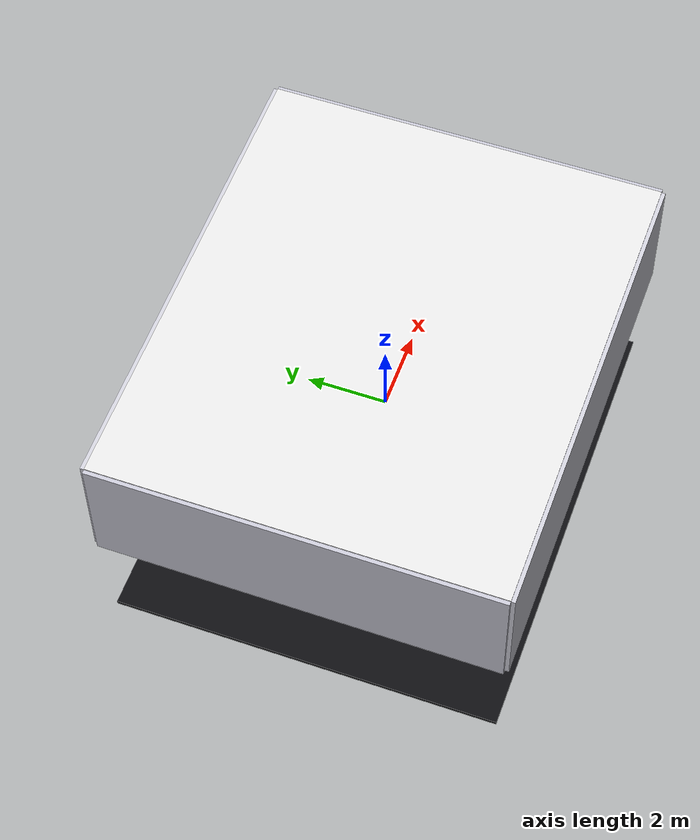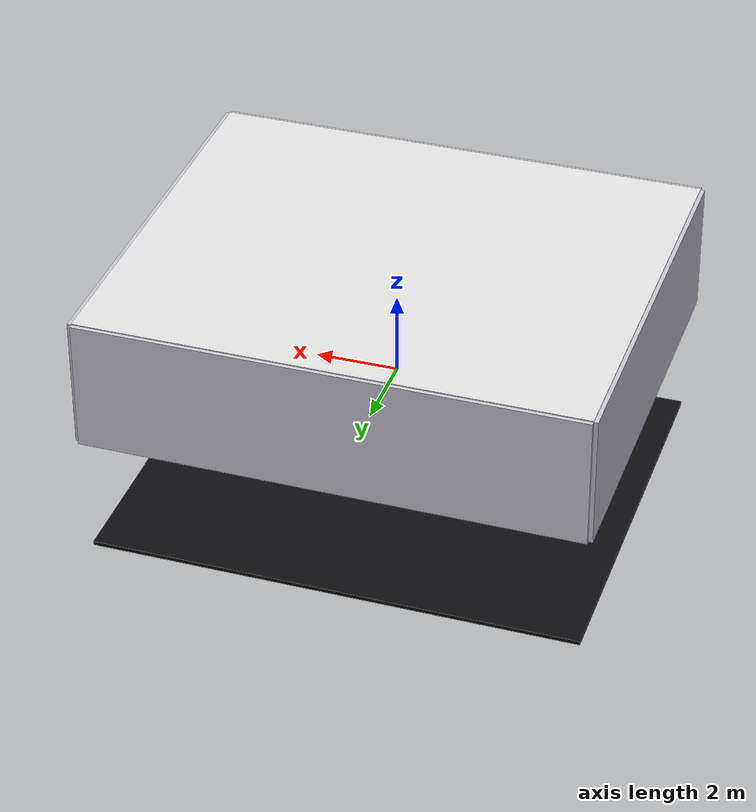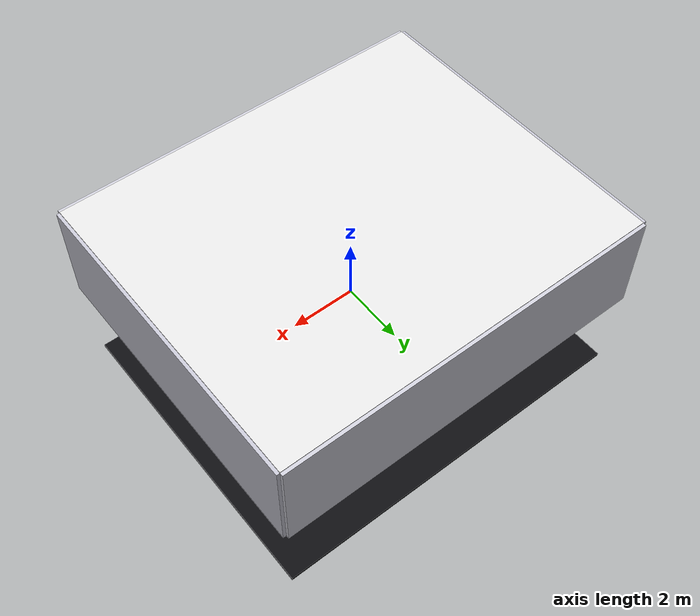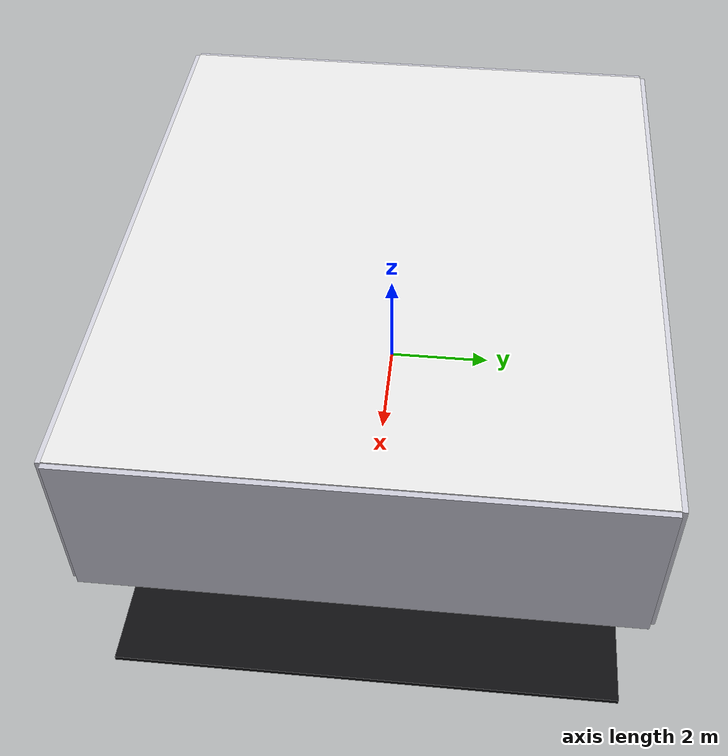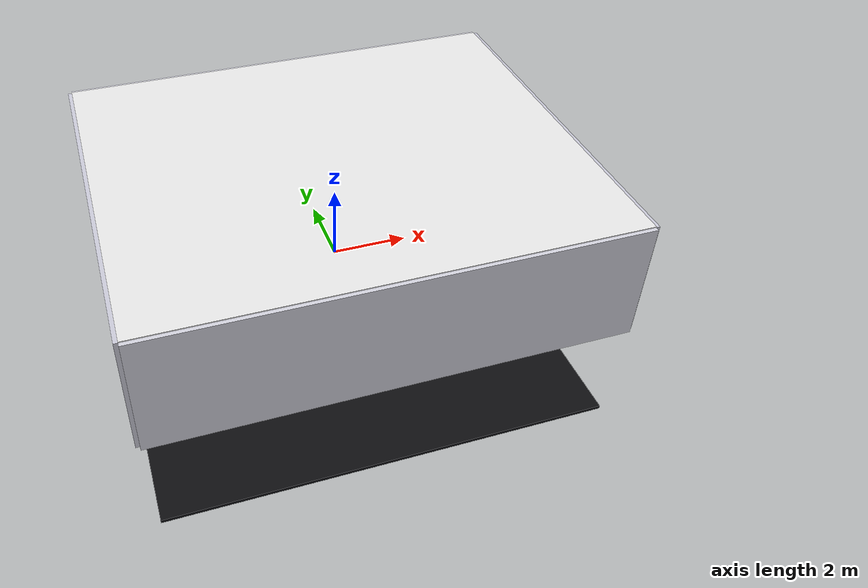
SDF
<?xml version="1.0" ?>
<sdf version="1.9">
  <world name="indoor_robotics_lab">
    <physics name="1ms" type="ignored">
      <max_step_size>0.001</max_step_size>
      <real_time_factor>1.0</real_time_factor>
      <real_time_update_rate>1000</real_time_update_rate>
    </physics>

    <plugin filename="gz-sim-physics-system"
            name="gz::sim::systems::Physics"/>
    <plugin filename="gz-sim-user-commands-system"
            name="gz::sim::systems::UserCommands"/>
    <plugin filename="gz-sim-scene-broadcaster-system"
            name="gz::sim::systems::SceneBroadcaster"/>
    <plugin filename="gz-sim-sensors-system"
            name="gz::sim::systems::Sensors">
      <render_engine>ogre2</render_engine>
    </plugin>

    <scene>
      <ambient>0.3 0.3 0.3 1</ambient>
      <background>0.15 0.15 0.18 1</background>
      <shadows>true</shadows>
      <grid>false</grid>
    </scene>

    <gravity>0 0 -9.81</gravity>
    <magnetic_field>6e-06 2.3e-05 -4.2e-05</magnetic_field>
    <atmosphere type="adiabatic"/>

    <light name="sun" type="directional">
      <pose>0 0 10 0 0 0</pose>
      <cast_shadows>true</cast_shadows>
      <diffuse>0.8 0.8 0.8 1</diffuse>
      <specular>0.2 0.2 0.2 1</specular>
      <direction>-0.5 0.1 -0.9</direction>
      <attenuation>
        <range>1000</range>
        <constant>0.9</constant>
        <linear>0.01</linear>
        <quadratic>0.001</quadratic>
      </attenuation>
    </light>

    <light name="lab_light_1" type="point">
      <pose>-3.0 2.5 2.8 0 0 0</pose>
      <diffuse>1.0 0.98 0.92 1</diffuse>
      <specular>0.3 0.3 0.3 1</specular>
      <attenuation>
        <range>8</range><constant>0.4</constant>
        <linear>0.05</linear><quadratic>0.01</quadratic>
      </attenuation>
      <cast_shadows>false</cast_shadows>
    </light>
    <light name="lab_light_2" type="point">
      <pose>3.0 2.5 2.8 0 0 0</pose>
      <diffuse>1.0 0.98 0.92 1</diffuse>
      <specular>0.3 0.3 0.3 1</specular>
      <attenuation>
        <range>8</range><constant>0.4</constant>
        <linear>0.05</linear><quadratic>0.01</quadratic>
      </attenuation>
      <cast_shadows>false</cast_shadows>
    </light>
    <light name="lab_light_3" type="point">
      <pose>-3.0 -2.5 2.8 0 0 0</pose>
      <diffuse>1.0 0.98 0.92 1</diffuse>
      <specular>0.3 0.3 0.3 1</specular>
      <attenuation>
        <range>8</range><constant>0.4</constant>
        <linear>0.05</linear><quadratic>0.01</quadratic>
      </attenuation>
      <cast_shadows>false</cast_shadows>
    </light>
    <light name="lab_light_4" type="point">
      <pose>3.0 -2.5 2.8 0 0 0</pose>
      <diffuse>1.0 0.98 0.92 1</diffuse>
      <specular>0.3 0.3 0.3 1</specular>
      <attenuation>
        <range>8</range><constant>0.4</constant>
        <linear>0.05</linear><quadratic>0.01</quadratic>
      </attenuation>
      <cast_shadows>false</cast_shadows>
    </light>

    <light name="platform_spotlight" type="spot">
      <pose>0 0 2.9 0 0 0</pose>
      <diffuse>1.0 1.0 1.0 1</diffuse>
      <specular>0.5 0.5 0.5 1</specular>
      <direction>0 0 -1</direction>
      <spot>
        <inner_angle>0.6</inner_angle>
        <outer_angle>1.0</outer_angle>
        <falloff>1.0</falloff>
      </spot>
      <attenuation>
        <range>5</range><constant>0.3</constant>
        <linear>0.05</linear><quadratic>0.01</quadratic>
      </attenuation>
      <cast_shadows>true</cast_shadows>
    </light>

    <model name="lab_floor">
      <static>true</static>
      <pose>0 0 -0.025 0 0 0</pose>
      <link name="floor_link">
        <collision name="floor_col">
          <geometry><box><size>12 10 0.05</size></box></geometry>
          <surface>
            <friction><ode><mu>0.8</mu><mu2>0.8</mu2></ode></friction>
          </surface>
        </collision>
        <visual name="floor_vis">
          <geometry><box><size>12 10 0.05</size></box></geometry>
          <material>
            <ambient>0.55 0.55 0.55 1</ambient>
            <diffuse>0.6 0.6 0.62 1</diffuse>
            <specular>0.1 0.1 0.1 1</specular>
          </material>
        </visual>
      </link>
    </model>

    <model name="grid_x1"><static>true</static><pose>0 -4 0.001 0 0 0</pose>
      <link name="l"><visual name="v"><geometry><box><size>12 0.01 0.002</size></box></geometry>
        <material><ambient>0.4 0.4 0.45 1</ambient><diffuse>0.4 0.4 0.45 1</diffuse></material></visual></link></model>
    <model name="grid_x2"><static>true</static><pose>0 -3 0.001 0 0 0</pose>
      <link name="l"><visual name="v"><geometry><box><size>12 0.01 0.002</size></box></geometry>
        <material><ambient>0.4 0.4 0.45 1</ambient><diffuse>0.4 0.4 0.45 1</diffuse></material></visual></link></model>
    <model name="grid_x3"><static>true</static><pose>0 -2 0.001 0 0 0</pose>
      <link name="l"><visual name="v"><geometry><box><size>12 0.01 0.002</size></box></geometry>
        <material><ambient>0.4 0.4 0.45 1</ambient><diffuse>0.4 0.4 0.45 1</diffuse></material></visual></link></model>
    <model name="grid_x4"><static>true</static><pose>0 -1 0.001 0 0 0</pose>
      <link name="l"><visual name="v"><geometry><box><size>12 0.01 0.002</size></box></geometry>
        <material><ambient>0.4 0.4 0.45 1</ambient><diffuse>0.4 0.4 0.45 1</diffuse></material></visual></link></model>
    <model name="grid_x5"><static>true</static><pose>0 0 0.001 0 0 0</pose>
      <link name="l"><visual name="v"><geometry><box><size>12 0.01 0.002</size></box></geometry>
        <material><ambient>0.35 0.35 0.4 1</ambient><diffuse>0.35 0.35 0.4 1</diffuse></material></visual></link></model>
    <model name="grid_x6"><static>true</static><pose>0 1 0.001 0 0 0</pose>
      <link name="l"><visual name="v"><geometry><box><size>12 0.01 0.002</size></box></geometry>
        <material><ambient>0.4 0.4 0.45 1</ambient><diffuse>0.4 0.4 0.45 1</diffuse></material></visual></link></model>
    <model name="grid_x7"><static>true</static><pose>0 2 0.001 0 0 0</pose>
      <link name="l"><visual name="v"><geometry><box><size>12 0.01 0.002</size></box></geometry>
        <material><ambient>0.4 0.4 0.45 1</ambient><diffuse>0.4 0.4 0.45 1</diffuse></material></visual></link></model>
    <model name="grid_x8"><static>true</static><pose>0 3 0.001 0 0 0</pose>
      <link name="l"><visual name="v"><geometry><box><size>12 0.01 0.002</size></box></geometry>
        <material><ambient>0.4 0.4 0.45 1</ambient><diffuse>0.4 0.4 0.45 1</diffuse></material></visual></link></model>
    <model name="grid_x9"><static>true</static><pose>0 4 0.001 0 0 0</pose>
      <link name="l"><visual name="v"><geometry><box><size>12 0.01 0.002</size></box></geometry>
        <material><ambient>0.4 0.4 0.45 1</ambient><diffuse>0.4 0.4 0.45 1</diffuse></material></visual></link></model>

    <model name="lab_ceiling">
      <static>true</static>
      <pose>0 0 3.2 0 0 0</pose>
      <link name="ceiling_link">
        <collision name="c"><geometry><box><size>12 10 0.05</size></box></geometry></collision>
        <visual name="v">
          <geometry><box><size>12 10 0.05</size></box></geometry>
          <material>
            <ambient>0.85 0.85 0.85 1</ambient>
            <diffuse>0.88 0.88 0.88 1</diffuse>
          </material>
        </visual>
      </link>
    </model>

    <model name="wall_north">
      <static>true</static><pose>0 5.0 1.6 0 0 0</pose>
      <link name="l">
        <collision name="c"><geometry><box><size>12 0.2 3.2</size></box></geometry></collision>
        <visual name="v"><geometry><box><size>12 0.2 3.2</size></box></geometry>
          <material><ambient>0.78 0.78 0.82 1</ambient><diffuse>0.8 0.8 0.84 1</diffuse></material></visual>
      </link>
    </model>
    <model name="wall_south">
      <static>true</static><pose>0 -5.0 1.6 0 0 0</pose>
      <link name="l">
        <collision name="c"><geometry><box><size>12 0.2 3.2</size></box></geometry></collision>
        <visual name="v"><geometry><box><size>12 0.2 3.2</size></box></geometry>
          <material><ambient>0.78 0.78 0.82 1</ambient><diffuse>0.8 0.8 0.84 1</diffuse></material></visual>
      </link>
    </model>
    <model name="wall_east">
      <static>true</static><pose>6.0 0 1.6 0 0 0</pose>
      <link name="l">
        <collision name="c"><geometry><box><size>0.2 10 3.2</size></box></geometry></collision>
        <visual name="v"><geometry><box><size>0.2 10 3.2</size></box></geometry>
          <material><ambient>0.75 0.75 0.80 1</ambient><diffuse>0.77 0.77 0.82 1</diffuse></material></visual>
      </link>
    </model>
    <model name="wall_west">
      <static>true</static><pose>-6.0 0 1.6 0 0 0</pose>
      <link name="l">
        <collision name="c"><geometry><box><size>0.2 10 3.2</size></box></geometry></collision>
        <visual name="v"><geometry><box><size>0.2 10 3.2</size></box></geometry>
          <material><ambient>0.75 0.75 0.80 1</ambient><diffuse>0.77 0.77 0.82 1</diffuse></material></visual>
      </link>
    </model>

   <model name="baseboard_north"><static>true</static><pose>0 4.85 0.075 0 0 0</pose>
      <link name="l"><visual name="v"><geometry><box><size>11.6 0.05 0.15</size></box></geometry>
        <material><ambient>0.25 0.25 0.28 1</ambient><diffuse>0.25 0.25 0.28 1</diffuse></material></visual></link></model>
    <model name="baseboard_south"><static>true</static><pose>0 -4.85 0.075 0 0 0</pose>
      <link name="l"><visual name="v"><geometry><box><size>11.6 0.05 0.15</size></box></geometry>
        <material><ambient>0.25 0.25 0.28 1</ambient><diffuse>0.25 0.25 0.28 1</diffuse></material></visual></link></model>
    <model name="baseboard_east"><static>true</static><pose>5.85 0 0.075 0 0 0</pose>
      <link name="l"><visual name="v"><geometry><box><size>0.05 9.6 0.15</size></box></geometry>
        <material><ambient>0.25 0.25 0.28 1</ambient><diffuse>0.25 0.25 0.28 1</diffuse></material></visual></link></model>
    <model name="baseboard_west"><static>true</static><pose>-5.85 0 0.075 0 0 0</pose>
      <link name="l"><visual name="v"><geometry><box><size>0.05 9.6 0.15</size></box></geometry>
        <material><ambient>0.25 0.25 0.28 1</ambient><diffuse>0.25 0.25 0.28 1</diffuse></material></visual></link></model>

    <model name="edge_test_platform">
      <static>true</static>
      <pose>0 0 0.05 0 0 0</pose>

      <link name="platform_link">
        <collision name="platform_col">
          <geometry>
            <box><size>4.0 4.0 0.10</size></box>
          </geometry>
          <surface>
            <friction><ode><mu>0.9</mu><mu2>0.9</mu2></ode></friction>
            <bounce><restitution_coefficient>0.0</restitution_coefficient></bounce>
          </surface>
        </collision>

        <visual name="platform_top_vis">
          <geometry>
            <box><size>4.0 4.0 0.10</size></box>
          </geometry>
          <material>
            <ambient>0.96 0.96 0.96 1</ambient>
            <diffuse>0.98 0.98 0.98 1</diffuse>
            <specular>0.4 0.4 0.4 1</specular>
          </material>
        </visual>

        <visual name="stripe_north">
          <pose>0  1.92 0.052 0 0 0</pose>
          <geometry><box><size>4.0 0.06 0.001</size></box></geometry>
          <material><ambient>1 0.8 0 1</ambient><diffuse>1 0.85 0 1</diffuse></material>
        </visual>
        <visual name="stripe_south">
          <pose>0 -1.92 0.052 0 0 0</pose>
          <geometry><box><size>4.0 0.06 0.001</size></box></geometry>
          <material><ambient>1 0.8 0 1</ambient><diffuse>1 0.85 0 1</diffuse></material>
        </visual>
        <visual name="stripe_east">
          <pose> 1.92 0 0.052 0 0 0</pose>
          <geometry><box><size>0.06 4.0 0.001</size></box></geometry>
          <material><ambient>1 0.8 0 1</ambient><diffuse>1 0.85 0 1</diffuse></material>
        </visual>
        <visual name="stripe_west">
          <pose>-1.92 0 0.052 0 0 0</pose>
          <geometry><box><size>0.06 4.0 0.001</size></box></geometry>
          <material><ambient>1 0.8 0 1</ambient><diffuse>1 0.85 0 1</diffuse></material>
        </visual>

        <visual name="center_cross_h">
          <pose>0 0 0.052 0 0 0</pose>
          <geometry><box><size>0.3 0.02 0.001</size></box></geometry>
          <material><ambient>0.2 0.4 1 1</ambient><diffuse>0.2 0.4 1 1</diffuse></material>
        </visual>
        <visual name="center_cross_v">
          <pose>0 0 0.052 0 0 0</pose>
          <geometry><box><size>0.02 0.3 0.001</size></box></geometry>
          <material><ambient>0.2 0.4 1 1</ambient><diffuse>0.2 0.4 1 1</diffuse></material>
        </visual>
      </link>
    </model>

    <model name="pit_floor">
      <static>true</static>
      <pose>0 0 -3.0 0 0 0</pose>
      <link name="link">
        <collision name="c"><geometry><box><size>11.8 9.8 0.1</size></box></geometry></collision>
        <visual name="v">
          <geometry><box><size>11.8 9.8 0.1</size></box></geometry>
          <material>
            <ambient>0.05 0.05 0.06 1</ambient>
            <diffuse>0.05 0.05 0.06 1</diffuse>
          </material>
        </visual>
      </link>
    </model>

    <model name="workbench">
      <static>true</static><pose>-4.5 3.0 0.45 0 0 0</pose>
      <link name="l">
        <collision name="c"><geometry><box><size>2.0 0.7 0.9</size></box></geometry></collision>
        <visual name="v"><geometry><box><size>2.0 0.7 0.9</size></box></geometry>
          <material><ambient>0.45 0.32 0.20 1</ambient><diffuse>0.50 0.36 0.22 1</diffuse>
            <specular>0.15 0.12 0.08 1</specular></material></visual>
      </link>
    </model>
    <model name="workbench_top">
      <static>true</static><pose>-4.5 3.0 0.905 0 0 0</pose>
      <link name="l">
        <collision name="c"><geometry><box><size>2.0 0.7 0.01</size></box></geometry></collision>
        <visual name="v"><geometry><box><size>2.0 0.7 0.01</size></box></geometry>
          <material><ambient>0.6 0.45 0.3 1</ambient><diffuse>0.62 0.47 0.3 1</diffuse>
            <specular>0.4 0.35 0.25 1</specular></material></visual>
      </link>
    </model>
    <model name="monitor_stand">
      <static>true</static><pose>-4.5 3.2 1.22 0 0 0</pose>
      <link name="l">
        <collision name="c"><geometry><box><size>0.04 0.04 0.25</size></box></geometry></collision>
        <visual name="v"><geometry><box><size>0.04 0.04 0.25</size></box></geometry>
          <material><ambient>0.15 0.15 0.15 1</ambient><diffuse>0.15 0.15 0.15 1</diffuse></material></visual>
      </link>
    </model>
    <model name="monitor_screen">
      <static>true</static><pose>-4.5 3.22 1.52 0 -0.15 0</pose>
      <link name="l">
        <collision name="c"><geometry><box><size>0.55 0.02 0.34</size></box></geometry></collision>
        <visual name="v"><geometry><box><size>0.55 0.02 0.34</size></box></geometry>
          <material><ambient>0.08 0.08 0.1 1</ambient><diffuse>0.08 0.08 0.1 1</diffuse></material></visual>
      </link>
    </model>
    <model name="toolbox">
      <static>true</static><pose>-5.2 3.15 0.97 0 0 0</pose>
      <link name="l">
        <collision name="c"><geometry><box><size>0.35 0.2 0.12</size></box></geometry></collision>
        <visual name="v"><geometry><box><size>0.35 0.2 0.12</size></box></geometry>
          <material><ambient>0.8 0.2 0.1 1</ambient><diffuse>0.85 0.22 0.1 1</diffuse></material></visual>
      </link>
    </model>
    <model name="lab_stool_seat">
      <static>true</static><pose>-4.5 2.0 0.65 0 0 0</pose>
      <link name="l">
        <collision name="c"><geometry><cylinder><radius>0.2</radius><length>0.05</length></cylinder></geometry></collision>
        <visual name="v"><geometry><cylinder><radius>0.2</radius><length>0.05</length></cylinder></geometry>
          <material><ambient>0.15 0.15 0.18 1</ambient><diffuse>0.15 0.15 0.18 1</diffuse></material></visual>
      </link>
    </model>
    <model name="lab_stool_pole">
      <static>true</static><pose>-4.5 2.0 0.325 0 0 0</pose>
      <link name="l">
        <collision name="c"><geometry><cylinder><radius>0.03</radius><length>0.65</length></cylinder></geometry></collision>
        <visual name="v"><geometry><cylinder><radius>0.03</radius><length>0.65</length></cylinder></geometry>
          <material><ambient>0.6 0.6 0.65 1</ambient><diffuse>0.6 0.6 0.65 1</diffuse></material></visual>
      </link>
    </model>

    <model name="shelf_back">
      <static>true</static><pose>5.4 -3.0 1.0 0 0 0</pose>
      <link name="l">
        <collision name="c"><geometry><box><size>0.05 2.0 2.0</size></box></geometry></collision>
        <visual name="v"><geometry><box><size>0.05 2.0 2.0</size></box></geometry>
          <material><ambient>0.55 0.45 0.35 1</ambient><diffuse>0.55 0.45 0.35 1</diffuse></material></visual>
      </link>
    </model>
    <model name="shelf_board_1">
      <static>true</static><pose>5.15 -3.0 0.55 0 0 0</pose>
      <link name="l">
        <collision name="c"><geometry><box><size>0.5 2.0 0.04</size></box></geometry></collision>
        <visual name="v"><geometry><box><size>0.5 2.0 0.04</size></box></geometry>
          <material><ambient>0.6 0.5 0.38 1</ambient><diffuse>0.6 0.5 0.38 1</diffuse></material></visual>
      </link>
    </model>
    <model name="shelf_board_2">
      <static>true</static><pose>5.15 -3.0 1.05 0 0 0</pose>
      <link name="l">
        <collision name="c"><geometry><box><size>0.5 2.0 0.04</size></box></geometry></collision>
        <visual name="v"><geometry><box><size>0.5 2.0 0.04</size></box></geometry>
          <material><ambient>0.6 0.5 0.38 1</ambient><diffuse>0.6 0.5 0.38 1</diffuse></material></visual>
      </link>
    </model>
    <model name="shelf_board_3">
      <static>true</static><pose>5.15 -3.0 1.55 0 0 0</pose>
      <link name="l">
        <collision name="c"><geometry><box><size>0.5 2.0 0.04</size></box></geometry></collision>
        <visual name="v"><geometry><box><size>0.5 2.0 0.04</size></box></geometry>
          <material><ambient>0.6 0.5 0.38 1</ambient><diffuse>0.6 0.5 0.38 1</diffuse></material></visual>
      </link>
    </model>
    <model name="box_shelf_1">
      <static>true</static><pose>5.15 -3.5 0.63 0 0 0</pose>
      <link name="l">
        <collision name="c"><geometry><box><size>0.2 0.3 0.14</size></box></geometry></collision>
        <visual name="v"><geometry><box><size>0.2 0.3 0.14</size></box></geometry>
          <material><ambient>0.2 0.5 0.7 1</ambient><diffuse>0.2 0.5 0.7 1</diffuse></material></visual>
      </link>
    </model>
    <model name="box_shelf_2">
      <static>true</static><pose>5.15 -2.8 0.63 0 0 0.3</pose>
      <link name="l">
        <collision name="c"><geometry><box><size>0.18 0.25 0.12</size></box></geometry></collision>
        <visual name="v"><geometry><box><size>0.18 0.25 0.12</size></box></geometry>
          <material><ambient>0.7 0.4 0.1 1</ambient><diffuse>0.7 0.4 0.1 1</diffuse></material></visual>
      </link>
    </model>
    <model name="box_shelf_3">
      <static>true</static><pose>5.15 -3.2 1.13 0 0 0</pose>
      <link name="l">
        <collision name="c"><geometry><box><size>0.22 0.35 0.14</size></box></geometry></collision>
        <visual name="v"><geometry><box><size>0.22 0.35 0.14</size></box></geometry>
          <material><ambient>0.15 0.6 0.3 1</ambient><diffuse>0.15 0.6 0.3 1</diffuse></material></visual>
      </link>
    </model>

    <model name="charging_station_base">
      <static>true</static><pose>4.5 -4.2 0.3 0 0 0</pose>
      <link name="l">
        <collision name="c"><geometry><box><size>0.6 0.4 0.6</size></box></geometry></collision>
        <visual name="v"><geometry><box><size>0.6 0.4 0.6</size></box></geometry>
          <material><ambient>0.12 0.12 0.14 1</ambient><diffuse>0.12 0.12 0.14 1</diffuse></material></visual>
      </link>
    </model>
    <model name="charging_station_panel">
      <static>true</static><pose>4.5 -4.0 0.7 0 -0.2 0</pose>
      <link name="l">
        <collision name="c"><geometry><box><size>0.45 0.04 0.2</size></box></geometry></collision>
        <visual name="v"><geometry><box><size>0.45 0.04 0.2</size></box></geometry>
          <material><ambient>0.05 0.4 0.8 1</ambient><diffuse>0.05 0.4 0.8 1</diffuse></material></visual>
      </link>
    </model>

    <model name="light_fixture_1"><static>true</static><pose>-3.0 2.5 3.18 0 0 0</pose>
      <link name="l"><visual name="v"><geometry><box><size>0.5 0.15 0.06</size></box></geometry>
        <material><ambient>1.0 1.0 0.9 1</ambient><diffuse>1.0 1.0 0.9 1</diffuse>
          <emissive>0.9 0.9 0.8 1</emissive></material></visual></link></model>
    <model name="light_fixture_2"><static>true</static><pose>3.0 2.5 3.18 0 0 0</pose>
      <link name="l"><visual name="v"><geometry><box><size>0.5 0.15 0.06</size></box></geometry>
        <material><ambient>1.0 1.0 0.9 1</ambient><diffuse>1.0 1.0 0.9 1</diffuse>
          <emissive>0.9 0.9 0.8 1</emissive></material></visual></link></model>
    <model name="light_fixture_3"><static>true</static><pose>-3.0 -2.5 3.18 0 0 0</pose>
      <link name="l"><visual name="v"><geometry><box><size>0.5 0.15 0.06</size></box></geometry>
        <material><ambient>1.0 1.0 0.9 1</ambient><diffuse>1.0 1.0 0.9 1</diffuse>
          <emissive>0.9 0.9 0.8 1</emissive></material></visual></link></model>
    <model name="light_fixture_4"><static>true</static><pose>3.0 -2.5 3.18 0 0 0</pose>
      <link name="l"><visual name="v"><geometry><box><size>0.5 0.15 0.06</size></box></geometry>
        <material><ambient>1.0 1.0 0.9 1</ambient><diffuse>1.0 1.0 0.9 1</diffuse>
          <emissive>0.9 0.9 0.8 1</emissive></material></visual></link></model>
    <model name="light_fixture_center"><static>true</static><pose>0 0 3.18 0 0 0</pose>
      <link name="l"><visual name="v"><geometry><cylinder><radius>0.12</radius><length>0.06</length></cylinder></geometry>
        <material><ambient>1.0 1.0 0.9 1</ambient><diffuse>1.0 1.0 0.9 1</diffuse>
          <emissive>1.0 1.0 0.85 1</emissive></material></visual></link></model>

    <model name="cable_conduit"><static>true</static><pose>-1.5 4.85 1.8 0 0 0</pose>
      <link name="l"><visual name="v"><geometry><box><size>5.0 0.06 0.06</size></box></geometry>
        <material><ambient>0.3 0.3 0.35 1</ambient><diffuse>0.3 0.3 0.35 1</diffuse></material></visual></link></model>

    <model name="fire_extinguisher"><static>true</static><pose>5.4 -4.5 0.3 0 0 0</pose>
      <link name="l">
        <collision name="c"><geometry><cylinder><radius>0.07</radius><length>0.55</length></cylinder></geometry></collision>
        <visual name="v"><geometry><cylinder><radius>0.07</radius><length>0.55</length></cylinder></geometry>
          <material><ambient>0.85 0.1 0.05 1</ambient><diffuse>0.85 0.1 0.05 1</diffuse></material></visual>
      </link>
    </model>

    <model name="door_frame_l"><static>true</static><pose>-0.5 -4.95 1.1 0 0 0</pose>
      <link name="l">
        <collision name="c"><geometry><box><size>0.1 0.1 2.2</size></box></geometry></collision>
        <visual name="v"><geometry><box><size>0.1 0.1 2.2</size></box></geometry>
          <material><ambient>0.5 0.4 0.3 1</ambient><diffuse>0.5 0.4 0.3 1</diffuse></material></visual>
      </link>
    </model>
    <model name="door_frame_r"><static>true</static><pose>0.5 -4.95 1.1 0 0 0</pose>
      <link name="l">
        <collision name="c"><geometry><box><size>0.1 0.1 2.2</size></box></geometry></collision>
        <visual name="v"><geometry><box><size>0.1 0.1 2.2</size></box></geometry>
          <material><ambient>0.5 0.4 0.3 1</ambient><diffuse>0.5 0.4 0.3 1</diffuse></material></visual>
      </link>
    </model>
    <model name="door_frame_top"><static>true</static><pose>0 -4.95 2.25 0 0 0</pose>
      <link name="l">
        <collision name="c"><geometry><box><size>1.1 0.1 0.1</size></box></geometry></collision>
        <visual name="v"><geometry><box><size>1.1 0.1 0.1</size></box></geometry>
          <material><ambient>0.5 0.4 0.3 1</ambient><diffuse>0.5 0.4 0.3 1</diffuse></material></visual>
      </link>
    </model>
    <model name="door_panel"><static>true</static><pose>0.95 -4.62 1.1 0 0 1.5708</pose>
      <link name="l">
        <collision name="c"><geometry><box><size>0.05 0.95 2.1</size></box></geometry></collision>
        <visual name="v"><geometry><box><size>0.05 0.95 2.1</size></box></geometry>
          <material><ambient>0.55 0.45 0.32 1</ambient><diffuse>0.55 0.45 0.32 1</diffuse>
            <specular>0.2 0.15 0.1 1</specular></material></visual>
      </link>
    </model>

    <model name="robot_spawn_marker">
      <static>true</static>
      <pose>0 0 0.101 0 0 0</pose>
      <link name="l">
        <visual name="v">
          <geometry><cylinder><radius>0.03</radius><length>0.002</length></cylinder></geometry>
          <material>
            <ambient>0.0 0.8 1.0 0.7</ambient>
            <diffuse>0.0 0.8 1.0 0.7</diffuse>
            <emissive>0.0 0.4 0.6 0.5</emissive>
          </material>
        </visual>
      </link>
    </model>

  </world>
</sdf>
